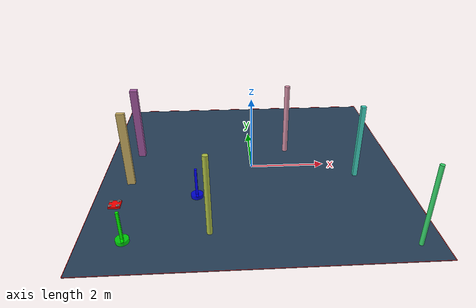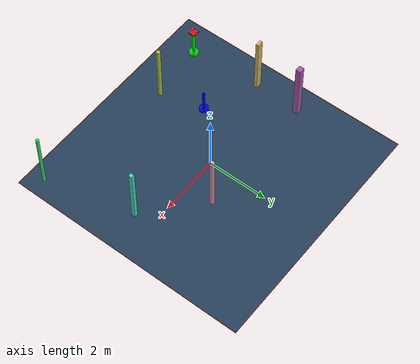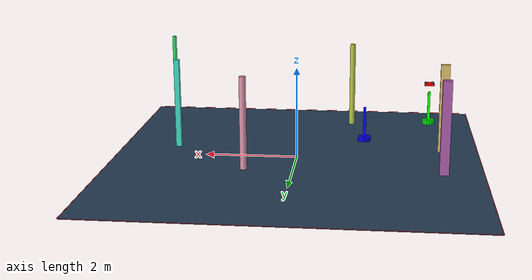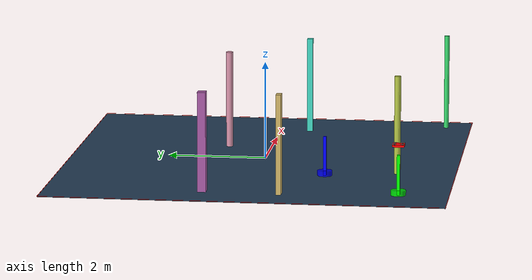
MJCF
<?xml version='1.0' encoding='utf-8'?>
<mujoco model="complex_uav_env">
  <compiler angle="degree" coordinate="local" inertiafromgeom="true" />
  <option integrator="RK4" timestep="0.01" />

  <visual>
    <headlight diffuse="0.6 0.6 0.6" ambient="0.3 0.3 0.3" />
    <rgba haze="0.15 0.25 0.35 1" />
    <global offwidth="2560" offheight="1440" />
  </visual>

  <asset>
    <texture type="skybox" builtin="gradient" rgb1="0.3 0.5 0.7" rgb2="0 0 0" width="512" height="3072" />
    <texture name="grid" type="2d" builtin="checker" rgb1="0.1 0.2 0.3" rgb2="0.2 0.3 0.4" width="512" height="512" />
    <material name="grid" texture="grid" texrepeat="1 1" />
  </asset>

  <worldbody>

    <geom name="ground" type="plane" size="4.0 4.0 0.1" material="grid" />
    <light name="light1" pos="0 0 4" dir="0 0 -1" diffuse="1 1 1" />

    <geom name="start_marker" type="cylinder" size="0.15 0.05" pos="-3.0 -3.0 0.05" rgba="0 1 0 0.8" />
    <geom name="start_pole" type="box" size="0.03 0.03 0.4" pos="-3.0 -3.0 0.4" rgba="0 1 0 1" />

    <geom name="goal_marker" type="cylinder" size="0.15 0.05" pos="-1.4529121434244745 -1.3843110347353362 0.05" rgba="0 0 1 0.8" />
    <geom name="goal_pole" type="box" size="0.03 0.03 0.4" pos="-1.4529121434244745 -1.3843110347353362 0.4" rgba="0 0 1 1" />

    <body name="chassis" pos="-3.0 -3.0 1.0">
      <joint type="free" name="root" />
      <geom type="box" size="0.12 0.12 0.02" rgba="1.0 0.0 0.0 1.0" mass="0.8" />

      <geom type="box" size="0.08 0.01 0.005" pos="0 0 0.01" rgba="0.3 0.3 0.3 1" />
      <geom type="box" size="0.01 0.08 0.005" pos="0 0 0.01" rgba="0.3 0.3 0.3 1" />

      <geom type="cylinder" size="0.015 0.02" pos="0.08 0.08 0.015" rgba="0.2 0.2 0.2 1" />
      <geom type="cylinder" size="0.015 0.02" pos="-0.08 0.08 0.015" rgba="0.2 0.2 0.2 1" />
      <geom type="cylinder" size="0.015 0.02" pos="0.08 -0.08 0.015" rgba="0.2 0.2 0.2 1" />
      <geom type="cylinder" size="0.015 0.02" pos="-0.08 -0.08 0.015" rgba="0.2 0.2 0.2 1" />

      <geom type="cylinder" size="0.04 0.002" pos="0.08 0.08 0.035" rgba="0.7 0.7 0.7 0.8" />
      <geom type="cylinder" size="0.04 0.002" pos="-0.08 0.08 0.035" rgba="0.7 0.7 0.7 0.8" />
      <geom type="cylinder" size="0.04 0.002" pos="0.08 -0.08 0.035" rgba="0.7 0.7 0.7 0.8" />
      <geom type="cylinder" size="0.04 0.002" pos="-0.08 -0.08 0.035" rgba="0.7 0.7 0.7 0.8" />

      <site name="motor1" pos="0.08 0.08 0" size="0.01" />
      <site name="motor2" pos="-0.08 0.08 0" size="0.01" />
      <site name="motor3" pos="0.08 -0.08 0" size="0.01" />
      <site name="motor4" pos="-0.08 -0.08 0" size="0.01" />
    </body>
    <geom name="test_obs_0" type="cylinder" size="0.05132393844105338 1.0" pos="3.459822644968562 -3.4711453338316214 1.0" rgba="0.21555882614223096 0.8380517592822597 0.4192257623693242 1.0" />
    <geom name="test_obs_1" type="cylinder" size="0.06508279354130536 1.0" pos="-1.1099671074060782 -2.813271063991241 1.0" rgba="0.6849276925941793 0.7498354617906074 0.2638317175249113 1.0" />
    <geom name="test_obs_2" type="box" size="0.058068246081792764 0.0585905170573779 1.0" pos="2.757605033281791 -0.609027611125445 1.0" rgba="0.24914382662511772 0.8306528138105334 0.7469809944361042 1.0" />
    <geom name="test_obs_3" type="cylinder" size="0.07206679178050407 1.0" pos="1.0471154071601503 0.8863849598170299 1.0" rgba="0.8264061462845154 0.5615970596452764 0.6503036186318504 1.0" />
    <geom name="test_obs_4" type="box" size="0.09750697656508497 0.08224078821242806 1.0" pos="-3.152354318893344 0.858008289351787 1.0" rgba="0.6406042192097156 0.34313911341034264 0.6293276378118151 1.0" />
    <geom name="test_obs_5" type="box" size="0.10229552148880619 0.05049415146754214 1.0" pos="-3.2071982286172265 -0.6670672568930174 1.0" rgba="0.8041469853320548 0.692679395553849 0.39556093484601706 1.0" />
  <geom name="boundary_north" type="box" size="4.0 0.005 0.002" pos="0 4.0 0.002" rgba="1.0 0.0 0.0 1.0" /><geom name="boundary_south" type="box" size="4.0 0.005 0.002" pos="0 -4.0 0.002" rgba="1.0 0.0 0.0 1.0" /><geom name="boundary_east" type="box" size="0.005 4.0 0.002" pos="4.0 0 0.002" rgba="1.0 0.0 0.0 1.0" /><geom name="boundary_west" type="box" size="0.005 4.0 0.002" pos="-4.0 0 0.002" rgba="1.0 0.0 0.0 1.0" /></worldbody>

  <actuator>
    <motor name="m1" gear="0 0 1 0 0 0" site="motor1" />
    <motor name="m2" gear="0 0 1 0 0 0" site="motor2" />
    <motor name="m3" gear="0 0 1 0 0 0" site="motor3" />
    <motor name="m4" gear="0 0 1 0 0 0" site="motor4" />
  </actuator>
</mujoco>
